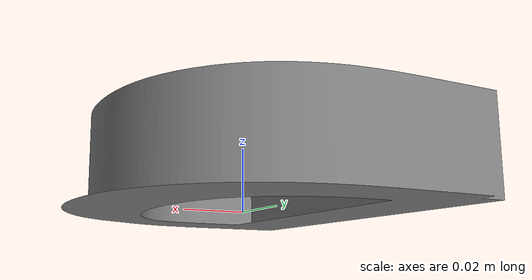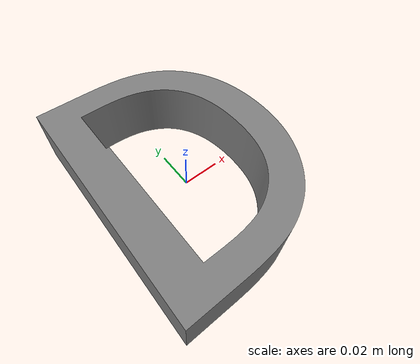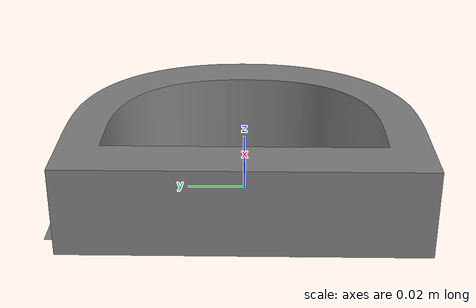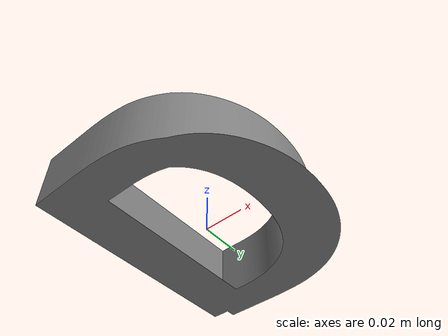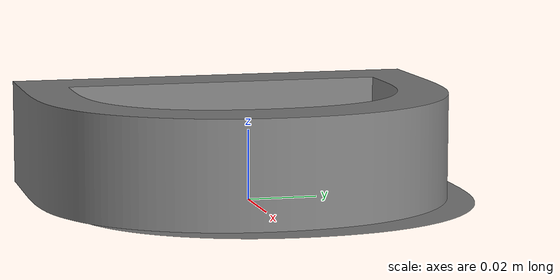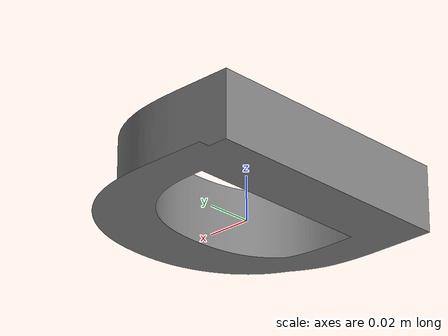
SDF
<?xml version="1.0"?>
<sdf version="1.8">
  <model name="alphabet_D">
    <static>false</static>
    <link name="link">
      <inertial>
        <pose>0 0 0.015 0 0 0</pose>
        <mass>0.02</mass>
        <inertia>
          <ixx>1.0e-5</ixx>
          <iyy>1.0e-5</iyy>
          <izz>1.0e-5</izz>
          <ixy>0</ixy>
          <ixz>0</ixz>
          <iyz>0</iyz>
        </inertia>
      </inertial>
      <collision name="box_00">
        <pose>-0.03700 0.00000 0.01500 0 0 0.00000</pose>
        <geometry>
          <box><size>0.0180 0.1240 0.0300</size></box>
        </geometry>
        <surface>
          <friction><ode><mu>1.2</mu><mu2>1.2</mu2></ode></friction>
          <contact><ode><kp>1e6</kp><kd>1e2</kd></ode></contact>
        </surface>
      </collision>
      <collision name="box_01">
        <pose>-0.00500 0.05300 0.01500 0 0 0.00000</pose>
        <geometry>
          <box><size>0.0640 0.0180 0.0300</size></box>
        </geometry>
        <surface>
          <friction><ode><mu>1.2</mu><mu2>1.2</mu2></ode></friction>
          <contact><ode><kp>1e6</kp><kd>1e2</kd></ode></contact>
        </surface>
      </collision>
      <collision name="box_02">
        <pose>-0.00500 -0.05300 0.01500 0 0 0.00000</pose>
        <geometry>
          <box><size>0.0640 0.0180 0.0300</size></box>
        </geometry>
        <surface>
          <friction><ode><mu>1.2</mu><mu2>1.2</mu2></ode></friction>
          <contact><ode><kp>1e6</kp><kd>1e2</kd></ode></contact>
        </surface>
      </collision>
      <collision name="box_03">
        <pose>0.04500 0.00000 0.01500 0 0 0.00000</pose>
        <geometry>
          <box><size>0.0200 0.0800 0.0300</size></box>
        </geometry>
        <surface>
          <friction><ode><mu>1.2</mu><mu2>1.2</mu2></ode></friction>
          <contact><ode><kp>1e6</kp><kd>1e2</kd></ode></contact>
        </surface>
      </collision>
      <visual name="visual">
        <geometry>
          <mesh>
            <uri>model://ur_setup_bringup/meshes/alphabet/TA-D.stl</uri>
            <scale>0.001 0.001 0.001</scale>
          </mesh>
        </geometry>
        <material>
          <ambient>0.50 0.50 0.50 1</ambient>
          <diffuse>0.50 0.50 0.50 1</diffuse>
          <specular>0.35 0.35 0.35 1</specular>
        </material>
      </visual>
    </link>
  </model>
</sdf>
